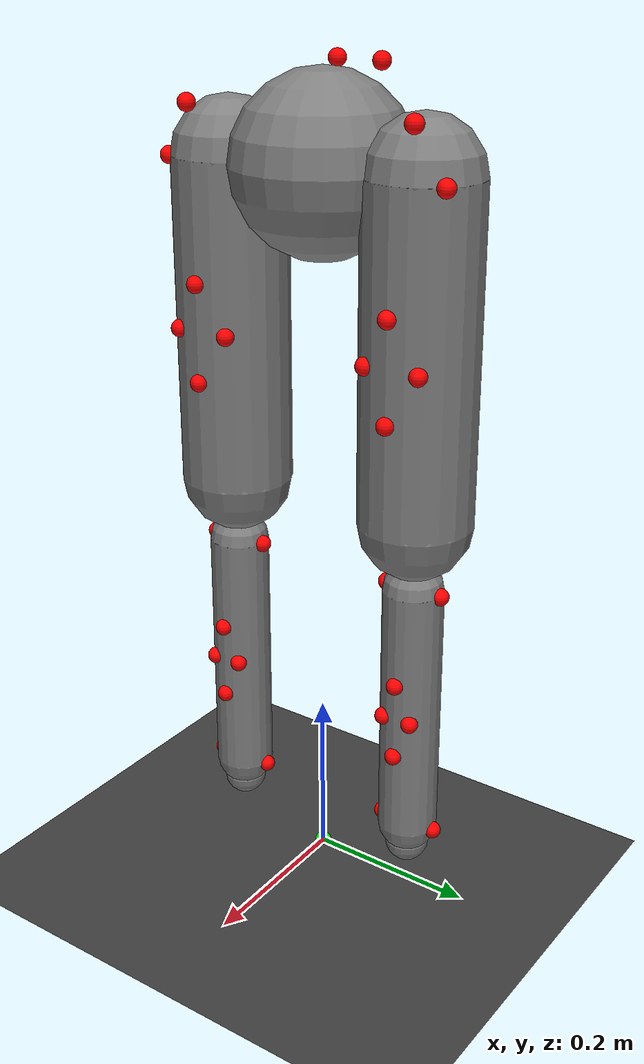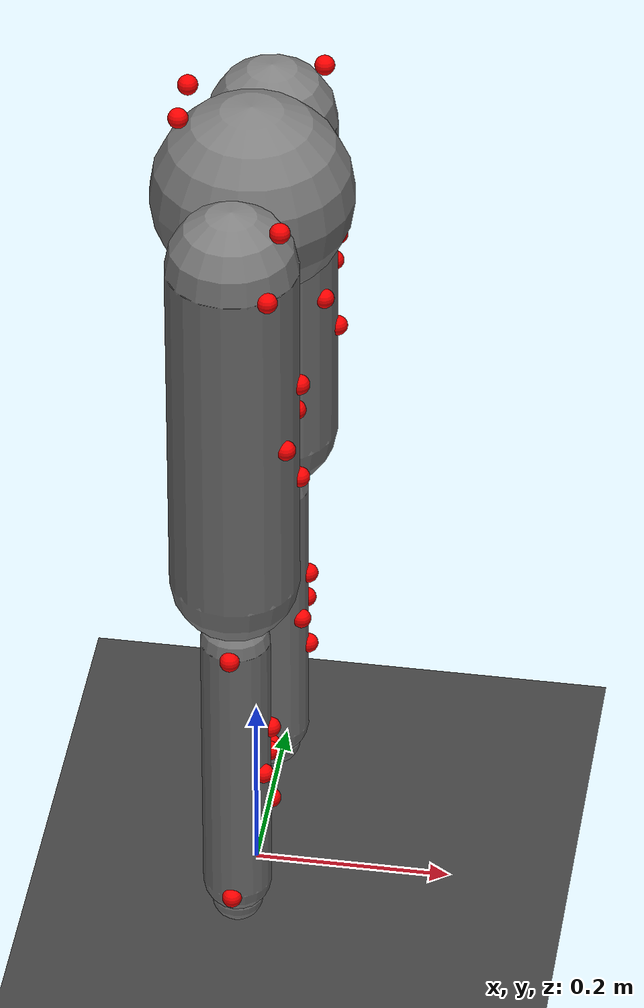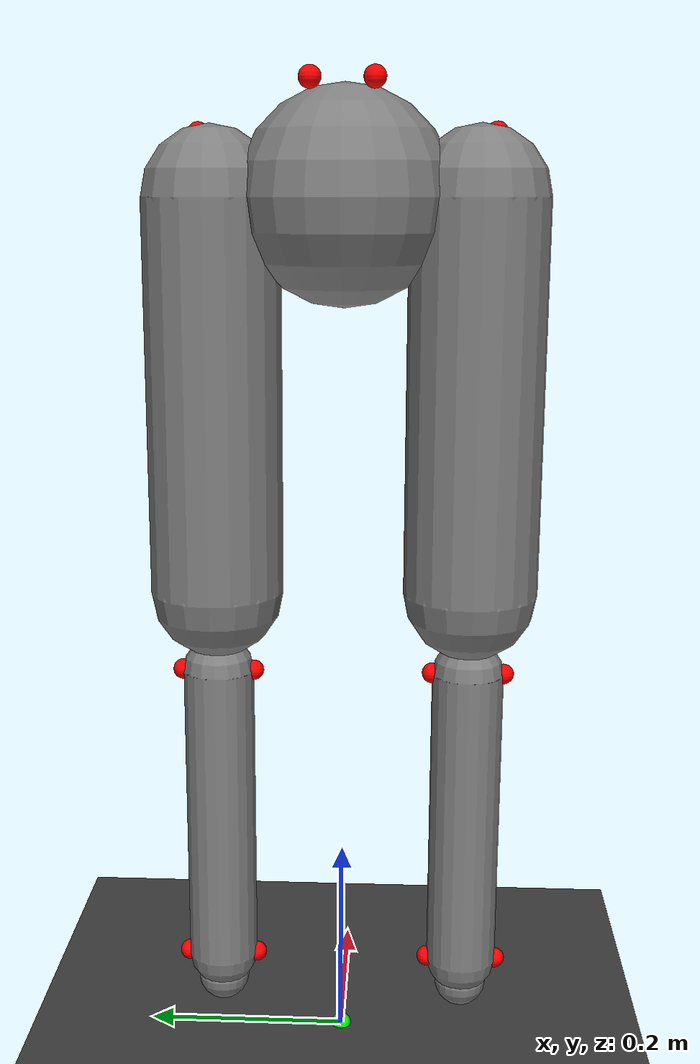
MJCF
<mujoco model="pm_mll">
  <compiler settotalmass="50.0"/>
  <default>
    <default class="/"/>
    <default class="left_leg/"/>
    <default class="right_leg/"/>
  </default>
  <asset>
    <texture name="texplane" type="2d" builtin="checker" rgb1="0.20000000000000001 0.20000000000000001 0.20000000000000001" rgb2="0.29999999999999999 0.29999999999999999 0.29999999999999999" width="512" height="512"/>
    <material name="grid" class="/" texture="texplane" texrepeat="1 1" texuniform="true" reflectance="0.0"/>
  </asset>
  <worldbody>
    <geom name="floor" class="/" type="plane" conaffinity="1" size="100 100 0.20000000000000001" material="grid" pos="0 0 0"/>
    <body name="torso" pos="0.0000 0.0000 0.8458">
      <light name="top" class="/" mode="trackcom" pos="0 0 2"/>
      <camera name="back" class="/" mode="trackcom" pos="-3 0 1" xyaxes="0 -1 0 1 0 2"/>
      <camera name="side" class="/" mode="trackcom" pos="0 -3 1" xyaxes="1 0 0 0 1 2"/>
      <freejoint name="root"/>
      <geom name="head" class="/" type="sphere" size="0.1000" pos="0.0000 0.0000 0.0000"/>
      <site name="com" class="/" type="sphere" rgba="1 0 0 1" size="0.0100" pos="0.0000 0.0000 0.0000"/>
      <camera name="egocentric" class="/" fovy="80.0" pos="0.089999999999999997 0 0" xyaxes="0 -1 0 0.10000000000000001 1 2"/>
      <site name="RASI" class="/" type="sphere" rgba="1 0 0 1" size="0.0100" pos="0.0489 -0.1400 0.0579"/>
      <site name="LASI" class="/" type="sphere" rgba="1 0 0 1" size="0.0100" pos="0.0489 0.1400 0.0579"/>
      <site name="RPSI" class="/" type="sphere" rgba="1 0 0 1" size="0.0100" pos="-0.0665 -0.0280 0.0997"/>
      <site name="LPSI" class="/" type="sphere" rgba="1 0 0 1" size="0.0100" pos="-0.0665 0.0280 0.0997"/>
      <site name="left_leg_site" class="/" size="9.9999999999999995e-07 9.9999999999999995e-07 9.9999999999999995e-07" pos="0 0.12336127164775351 0"/>
      <body pos="0.0000 0.1234 0.0000" name="left_leg/">
        <body name="left_leg/thigh" pos="0.0000 0.0000 0.0000">
          <joint name="left_leg/hip_x" class="left_leg/" type="hinge" axis="1 0 0" limited="true" solimplimit="0 0.98999999999999999 0.01" range="-25 5"/>
          <joint name="left_leg/hip_y" class="left_leg/" type="hinge" axis="0 1 0" limited="true" solimplimit="0 0.98999999999999999 0.01" range="-110 20"/>
          <geom name="left_leg/thigh" class="left_leg/" type="capsule" size="0.0648" mass="1e-06" fromto="0.0000 0.0000 0.0000 0.0000 0.0000 -0.3737"/>
          <site name="left_leg/LGT" class="left_leg/" type="sphere" rgba="1 0 0 1" size="0.0100" pos="0.0417 0.0496 0.0000"/>
          <site name="left_leg/LT1" class="left_leg/" type="sphere" rgba="1 0 0 1" size="0.0100" pos="0.0648 0.0000 -0.1308"/>
          <site name="left_leg/LT2" class="left_leg/" type="sphere" rgba="1 0 0 1" size="0.0100" pos="0.0561 0.0324 -0.1868"/>
          <site name="left_leg/LT3" class="left_leg/" type="sphere" rgba="1 0 0 1" size="0.0100" pos="0.0648 0.0000 -0.2429"/>
          <site name="left_leg/LT4" class="left_leg/" type="sphere" rgba="1 0 0 1" size="0.0100" pos="0.0561 -0.0324 -0.1868"/>
          <body name="left_leg/shin" pos="0.0000 0.0000 -0.4549">
            <joint name="left_leg/knee" class="left_leg/" type="hinge" pos="0 0 0.02" axis="0 -1 0" limited="true" solimplimit="0 0.98999999999999999 0.01" stiffness="0.0" range="-160 2" armature="0.01" damping="0.0"/>
            <geom name="left_leg/shin" class="left_leg/" type="capsule" size="0.0351" mass="1e-06" fromto="0.0000 0.0000 0.0000 0.0000 0.0000 -0.3096"/>
            <site name="left_leg/LKNL" class="left_leg/" type="sphere" rgba="1 0 0 1" size="0.0100" pos="0.0000 0.0351 0.0000"/>
            <site name="left_leg/LKNM" class="left_leg/" type="sphere" rgba="1 0 0 1" size="0.0100" pos="-0.0000 -0.0351 0.0000"/>
            <site name="left_leg/LS1" class="left_leg/" type="sphere" rgba="1 0 0 1" size="0.0100" pos="0.0351 0.0000 -0.1083"/>
            <site name="left_leg/LS2" class="left_leg/" type="sphere" rgba="1 0 0 1" size="0.0100" pos="0.0304 0.0176 -0.1548"/>
            <site name="left_leg/LS3" class="left_leg/" type="sphere" rgba="1 0 0 1" size="0.0100" pos="0.0351 0.0000 -0.2012"/>
            <site name="left_leg/LS4" class="left_leg/" type="sphere" rgba="1 0 0 1" size="0.0100" pos="0.0304 -0.0176 -0.1548"/>
            <site name="left_leg/LANL" class="left_leg/" type="sphere" rgba="1 0 0 1" size="0.0100" pos="0.0000 0.0351 -0.3096"/>
            <site name="left_leg/LANM" class="left_leg/" type="sphere" rgba="1 0 0 1" size="0.0100" pos="-0.0000 -0.0351 -0.3096"/>
            <body name="left_leg/foot" pos="0.0000 0.0000 -0.3357">
              <geom name="left_leg/foot" class="left_leg/" type="sphere" size="0.0261" mass="0.1" pos="0.0000 0.0000 0.0000"/>
              <site name="left_leg/foot" class="left_leg/" type="sphere" rgba="1 0 0 1" size="0.0100" pos="0.0000 0.0000 0.0000"/>
            </body>
          </body>
        </body>
      </body>
      <site name="right_leg_site" class="/" size="9.9999999999999995e-07 9.9999999999999995e-07 9.9999999999999995e-07" pos="0 -0.12336127164775351 0"/>
      <body pos="0.0000 -0.1234 0.0000" name="right_leg/">
        <body name="right_leg/thigh" pos="0.0000 0.0000 0.0000">
          <joint name="right_leg/hip_x" class="right_leg/" type="hinge" axis="1 0 0" limited="true" solimplimit="0 0.98999999999999999 0.01" range="-25 5"/>
          <joint name="right_leg/hip_y" class="right_leg/" type="hinge" axis="0 1 0" limited="true" solimplimit="0 0.98999999999999999 0.01" range="-110 20"/>
          <geom name="right_leg/thigh" class="right_leg/" type="capsule" size="0.0648" mass="1e-06" fromto="0.0000 0.0000 0.0000 0.0000 0.0000 -0.3737"/>
          <site name="right_leg/RGT" class="right_leg/" type="sphere" rgba="1 0 0 1" size="0.0100" pos="0.0417 -0.0496 0.0000"/>
          <site name="right_leg/RT1" class="right_leg/" type="sphere" rgba="1 0 0 1" size="0.0100" pos="0.0648 0.0000 -0.1308"/>
          <site name="right_leg/RT2" class="right_leg/" type="sphere" rgba="1 0 0 1" size="0.0100" pos="0.0561 0.0324 -0.1868"/>
          <site name="right_leg/RT3" class="right_leg/" type="sphere" rgba="1 0 0 1" size="0.0100" pos="0.0648 0.0000 -0.2429"/>
          <site name="right_leg/RT4" class="right_leg/" type="sphere" rgba="1 0 0 1" size="0.0100" pos="0.0561 -0.0324 -0.1868"/>
          <body name="right_leg/shin" pos="0.0000 0.0000 -0.4549">
            <joint name="right_leg/knee" class="right_leg/" type="hinge" pos="0 0 0.02" axis="0 -1 0" limited="true" solimplimit="0 0.98999999999999999 0.01" stiffness="0.0" range="-160 2" armature="0.01" damping="0.0"/>
            <geom name="right_leg/shin" class="right_leg/" type="capsule" size="0.0351" mass="1e-06" fromto="0.0000 0.0000 0.0000 0.0000 0.0000 -0.3096"/>
            <site name="right_leg/RKNL" class="right_leg/" type="sphere" rgba="1 0 0 1" size="0.0100" pos="-0.0000 -0.0351 0.0000"/>
            <site name="right_leg/RKNM" class="right_leg/" type="sphere" rgba="1 0 0 1" size="0.0100" pos="0.0000 0.0351 0.0000"/>
            <site name="right_leg/RS1" class="right_leg/" type="sphere" rgba="1 0 0 1" size="0.0100" pos="0.0351 0.0000 -0.1083"/>
            <site name="right_leg/RS2" class="right_leg/" type="sphere" rgba="1 0 0 1" size="0.0100" pos="0.0304 0.0176 -0.1548"/>
            <site name="right_leg/RS3" class="right_leg/" type="sphere" rgba="1 0 0 1" size="0.0100" pos="0.0351 0.0000 -0.2012"/>
            <site name="right_leg/RS4" class="right_leg/" type="sphere" rgba="1 0 0 1" size="0.0100" pos="0.0304 -0.0176 -0.1548"/>
            <site name="right_leg/RANL" class="right_leg/" type="sphere" rgba="1 0 0 1" size="0.0100" pos="0.0000 0.0351 -0.3096"/>
            <site name="right_leg/RANM" class="right_leg/" type="sphere" rgba="1 0 0 1" size="0.0100" pos="-0.0000 -0.0351 -0.3096"/>
            <body name="right_leg/foot" pos="0.0000 0.0000 -0.3357">
              <geom name="right_leg/foot" class="right_leg/" type="sphere" size="0.0261" mass="0.1" pos="0.0000 0.0000 0.0000"/>
              <site name="right_leg/foot" class="right_leg/" type="sphere" rgba="1 0 0 1" size="0.0100" pos="0.0000 0.0000 0.0000"/>
            </body>
          </body>
        </body>
      </body>
    </body>
    <body name="m0" mocap="true" pos="0 0 0">
      <geom name="m0" class="/" type="sphere" size="0.01" rgba="0 1 0 1" mass="0.0"/>
    </body>
    <body name="m1" mocap="true" pos="0 0 0">
      <geom name="m1" class="/" type="sphere" size="0.01" rgba="0 1 0 1" mass="0.0"/>
    </body>
    <body name="m2" mocap="true" pos="0 0 0">
      <geom name="m2" class="/" type="sphere" size="0.01" rgba="0 1 0 1" mass="0.0"/>
    </body>
    <body name="m3" mocap="true" pos="0 0 0">
      <geom name="m3" class="/" type="sphere" size="0.01" rgba="0 1 0 1" mass="0.0"/>
    </body>
    <body name="m4" mocap="true" pos="0 0 0">
      <geom name="m4" class="/" type="sphere" size="0.01" rgba="0 1 0 1" mass="0.0"/>
    </body>
    <body name="m5" mocap="true" pos="0 0 0">
      <geom name="m5" class="/" type="sphere" size="0.01" rgba="0 1 0 1" mass="0.0"/>
    </body>
    <body name="m6" mocap="true" pos="0 0 0">
      <geom name="m6" class="/" type="sphere" size="0.01" rgba="0 1 0 1" mass="0.0"/>
    </body>
    <body name="m7" mocap="true" pos="0 0 0">
      <geom name="m7" class="/" type="sphere" size="0.01" rgba="0 1 0 1" mass="0.0"/>
    </body>
    <body name="m8" mocap="true" pos="0 0 0">
      <geom name="m8" class="/" type="sphere" size="0.01" rgba="0 1 0 1" mass="0.0"/>
    </body>
    <body name="m9" mocap="true" pos="0 0 0">
      <geom name="m9" class="/" type="sphere" size="0.01" rgba="0 1 0 1" mass="0.0"/>
    </body>
    <body name="m10" mocap="true" pos="0 0 0">
      <geom name="m10" class="/" type="sphere" size="0.01" rgba="0 1 0 1" mass="0.0"/>
    </body>
    <body name="m11" mocap="true" pos="0 0 0">
      <geom name="m11" class="/" type="sphere" size="0.01" rgba="0 1 0 1" mass="0.0"/>
    </body>
    <body name="m12" mocap="true" pos="0 0 0">
      <geom name="m12" class="/" type="sphere" size="0.01" rgba="0 1 0 1" mass="0.0"/>
    </body>
    <body name="m13" mocap="true" pos="0 0 0">
      <geom name="m13" class="/" type="sphere" size="0.01" rgba="0 1 0 1" mass="0.0"/>
    </body>
    <body name="m14" mocap="true" pos="0 0 0">
      <geom name="m14" class="/" type="sphere" size="0.01" rgba="0 1 0 1" mass="0.0"/>
    </body>
    <body name="m15" mocap="true" pos="0 0 0">
      <geom name="m15" class="/" type="sphere" size="0.01" rgba="0 1 0 1" mass="0.0"/>
    </body>
    <body name="m16" mocap="true" pos="0 0 0">
      <geom name="m16" class="/" type="sphere" size="0.01" rgba="0 1 0 1" mass="0.0"/>
    </body>
    <body name="m17" mocap="true" pos="0 0 0">
      <geom name="m17" class="/" type="sphere" size="0.01" rgba="0 1 0 1" mass="0.0"/>
    </body>
    <body name="m18" mocap="true" pos="0 0 0">
      <geom name="m18" class="/" type="sphere" size="0.01" rgba="0 1 0 1" mass="0.0"/>
    </body>
    <body name="m19" mocap="true" pos="0 0 0">
      <geom name="m19" class="/" type="sphere" size="0.01" rgba="0 1 0 1" mass="0.0"/>
    </body>
    <body name="m20" mocap="true" pos="0 0 0">
      <geom name="m20" class="/" type="sphere" size="0.01" rgba="0 1 0 1" mass="0.0"/>
    </body>
    <body name="m21" mocap="true" pos="0 0 0">
      <geom name="m21" class="/" type="sphere" size="0.01" rgba="0 1 0 1" mass="0.0"/>
    </body>
    <body name="m22" mocap="true" pos="0 0 0">
      <geom name="m22" class="/" type="sphere" size="0.01" rgba="0 1 0 1" mass="0.0"/>
    </body>
    <body name="m23" mocap="true" pos="0 0 0">
      <geom name="m23" class="/" type="sphere" size="0.01" rgba="0 1 0 1" mass="0.0"/>
    </body>
    <body name="m24" mocap="true" pos="0 0 0">
      <geom name="m24" class="/" type="sphere" size="0.01" rgba="0 1 0 1" mass="0.0"/>
    </body>
    <body name="m25" mocap="true" pos="0 0 0">
      <geom name="m25" class="/" type="sphere" size="0.01" rgba="0 1 0 1" mass="0.0"/>
    </body>
    <body name="m26" mocap="true" pos="0 0 0">
      <geom name="m26" class="/" type="sphere" size="0.01" rgba="0 1 0 1" mass="0.0"/>
    </body>
    <body name="m27" mocap="true" pos="0 0 0">
      <geom name="m27" class="/" type="sphere" size="0.01" rgba="0 1 0 1" mass="0.0"/>
    </body>
    <body name="m28" mocap="true" pos="0 0 0">
      <geom name="m28" class="/" type="sphere" size="0.01" rgba="0 1 0 1" mass="0.0"/>
    </body>
    <body name="m29" mocap="true" pos="0 0 0">
      <geom name="m29" class="/" type="sphere" size="0.01" rgba="0 1 0 1" mass="0.0"/>
    </body>
    <body name="m30" mocap="true" pos="0 0 0">
      <geom name="m30" class="/" type="sphere" size="0.01" rgba="0 1 0 1" mass="0.0"/>
    </body>
    <body name="m31" mocap="true" pos="0 0 0">
      <geom name="m31" class="/" type="sphere" size="0.01" rgba="0 1 0 1" mass="0.0"/>
    </body>
    <body name="m32" mocap="true" pos="0 0 0">
      <geom name="m32" class="/" type="sphere" size="0.01" rgba="0 1 0 1" mass="0.0"/>
    </body>
    <body name="m33" mocap="true" pos="0 0 0">
      <geom name="m33" class="/" type="sphere" size="0.01" rgba="0 1 0 1" mass="0.0"/>
    </body>
    <body name="m34" mocap="true" pos="0 0 0">
      <geom name="m34" class="/" type="sphere" size="0.01" rgba="0 1 0 1" mass="0.0"/>
    </body>
    <body name="m35" mocap="true" pos="0 0 0">
      <geom name="m35" class="/" type="sphere" size="0.01" rgba="0 1 0 1" mass="0.0"/>
    </body>
    <body name="m36" mocap="true" pos="0 0 0">
      <geom name="m36" class="/" type="sphere" size="0.01" rgba="0 1 0 1" mass="0.0"/>
    </body>
    <body name="m37" mocap="true" pos="0 0 0">
      <geom name="m37" class="/" type="sphere" size="0.01" rgba="0 1 0 1" mass="0.0"/>
    </body>
    <body name="m38" mocap="true" pos="0 0 0">
      <geom name="m38" class="/" type="sphere" size="0.01" rgba="0 1 0 1" mass="0.0"/>
    </body>
    <body name="m39" mocap="true" pos="0 0 0">
      <geom name="m39" class="/" type="sphere" size="0.01" rgba="0 1 0 1" mass="0.0"/>
    </body>
  </worldbody>
  <equality>
    <weld name="world_root" class="/" active="false" body1="torso" relpose="0 0 -2 1 0 0 0"/>
  </equality>
  <actuator>
    <motor name="left_leg/hip_x" class="left_leg/" joint="left_leg/hip_x"/>
    <motor name="left_leg/hip_y" class="left_leg/" joint="left_leg/hip_y"/>
    <motor name="left_leg/knee" class="left_leg/" joint="left_leg/knee"/>
    <motor name="right_leg/hip_x" class="right_leg/" joint="right_leg/hip_x"/>
    <motor name="right_leg/hip_y" class="right_leg/" joint="right_leg/hip_y"/>
    <motor name="right_leg/knee" class="right_leg/" joint="right_leg/knee"/>
  </actuator>
</mujoco>
